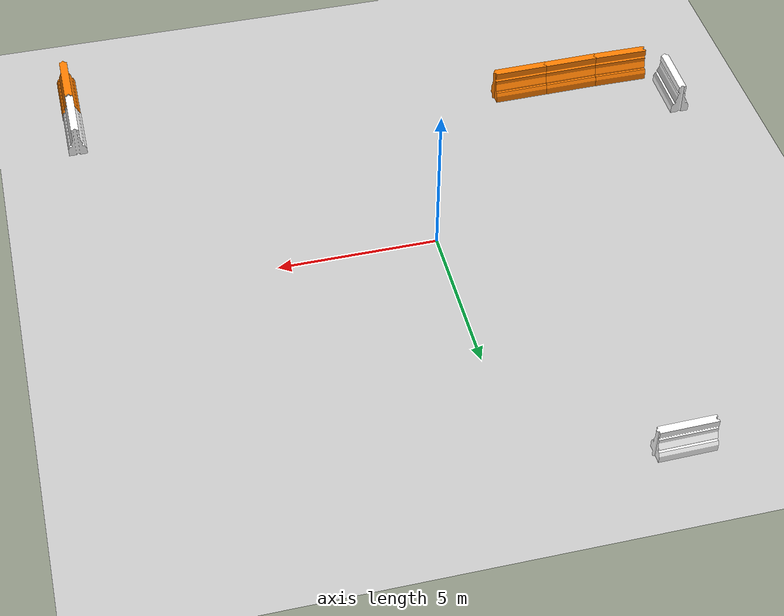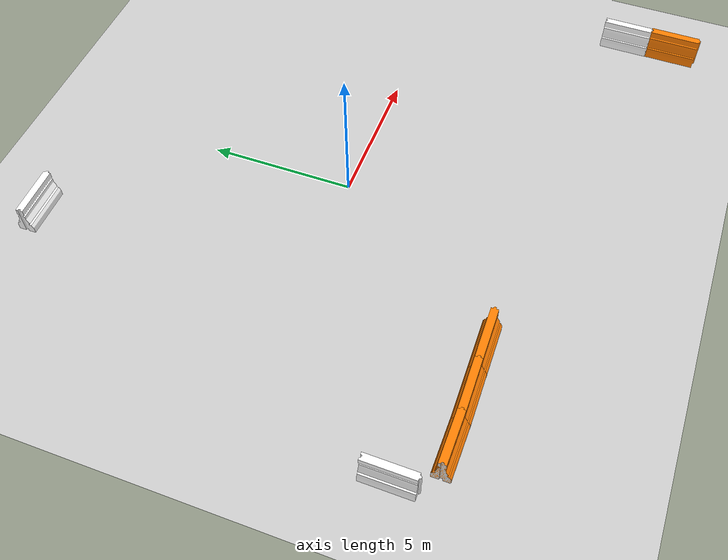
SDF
<sdf version="1.6">
 <world name="default">
  <light name="sun" type="directional">
   <pose>0 0 10 0 -0 0</pose>
   <diffuse>0.8 0.8 0.8 1</diffuse>
   <specular>0.2 0.2 0.2 1</specular>
   <attenuation>
    <range>1000</range>
    <constant>0.9</constant>
    <linear>0.01</linear>
    <quadratic>0.001</quadratic>
   </attenuation>
   <direction>-0.5 0.1 -0.9</direction>
  </light>
  <model name="ground_plane">
   <static>1</static>
   <link name="link">
    <collision name="collision">
     <geometry><plane><normal>0 0 1</normal><size>100 100</size></plane></geometry>
     <surface><friction><ode><mu>100</mu><mu2>50</mu2></ode></friction></surface>
    </collision>
    <visual name="visual">
     <cast_shadows>0</cast_shadows>
     <geometry><plane><normal>0 0 1</normal><size>100 100</size></plane></geometry>
     <material>
      <script><uri>file://media/materials/scripts/gazebo.material</uri><name>Gazebo/Grey</name></script>
     </material>
    </visual>
    <velocity_decay><linear>0</linear><angular>0</angular></velocity_decay>
   </link>
  </model>
  <model name="camera_model_1">
   <pose>-5 -5 3.5 0 1.57079 1.57079</pose>
   <static>true</static>
   <link name="camera_link">
    <sensor type="camera" name="camera">
     <update_rate>1</update_rate>
     <visualize>true</visualize>
     <camera name="head">
      <horizontal_fov>1.7962634</horizontal_fov>
      <image><width>640</width><height>480</height><format>R8G8B8</format></image>
      <clip><near>0.02</near><far>500</far></clip>
      <noise><type>gaussian</type><mean>0.0</mean><stddev>0.007</stddev></noise>
     </camera>
     <plugin name="camera_controller" filename="libgazebo_ros_camera.so">
      <ros>
       <namespace>overhead_cam_1</namespace>
       <argument>image_raw:=image_raw</argument>
       <argument>camera_info:=camera_info</argument>
      </ros>
     </plugin>
    </sensor>
   </link>
  </model>
  <model name="camera_model_2">
   <pose>0.5 -5 3.5 0 1.57079 1.57079</pose>
   <static>true</static>
   <link name="camera_link">
    <sensor type="camera" name="camera">
     <update_rate>1</update_rate>
     <visualize>true</visualize>
     <camera name="head">
      <horizontal_fov>1.7962634</horizontal_fov>
      <image><width>640</width><height>480</height><format>R8G8B8</format></image>
      <clip><near>0.02</near><far>500</far></clip>
      <noise><type>gaussian</type><mean>0.0</mean><stddev>0.007</stddev></noise>
     </camera>
     <plugin name="camera_controller" filename="libgazebo_ros_camera.so">
      <ros>
       <namespace>overhead_cam_2</namespace>
       <argument>image_raw:=image_raw</argument>
       <argument>camera_info:=camera_info</argument>
      </ros>
     </plugin>
    </sensor>
   </link>
  </model>
  <model name="camera_model_3">
   <pose>-5 -0.8 3.5 0 1.57079 1.57079</pose>
   <static>true</static>
   <link name="camera_link">
    <sensor type="camera" name="camera">
     <update_rate>1</update_rate>
     <visualize>true</visualize>
     <camera name="head">
      <horizontal_fov>1.7962634</horizontal_fov>
      <image><width>640</width><height>480</height><format>R8G8B8</format></image>
      <clip><near>0.02</near><far>500</far></clip>
      <noise><type>gaussian</type><mean>0.0</mean><stddev>0.007</stddev></noise>
     </camera>
     <plugin name="camera_controller" filename="libgazebo_ros_camera.so">
      <ros>
       <namespace>overhead_cam_3</namespace>
       <argument>image_raw:=image_raw</argument>
       <argument>camera_info:=camera_info</argument>
      </ros>
     </plugin>
    </sensor>
   </link>
  </model>
  <model name="camera_model_4">
   <pose>0.5 -0.8 3.5 0 1.57079 1.57079</pose>
   <static>true</static>
   <link name="camera_link">
    <sensor type="camera" name="camera">
     <update_rate>1</update_rate>
     <visualize>true</visualize>
     <camera name="head">
      <horizontal_fov>1.7962634</horizontal_fov>
      <image><width>640</width><height>480</height><format>R8G8B8</format></image>
      <clip><near>0.02</near><far>500</far></clip>
      <noise><type>gaussian</type><mean>0.0</mean><stddev>0.007</stddev></noise>
     </camera>
     <plugin name="camera_controller" filename="libgazebo_ros_camera.so">
      <ros>
       <namespace>overhead_cam_4</namespace>
       <argument>image_raw:=image_raw</argument>
       <argument>camera_info:=camera_info</argument>
      </ros>
     </plugin>
    </sensor>
   </link>
  </model>
  <physics type="ode">
   <max_step_size>0.001</max_step_size>
   <real_time_factor>1</real_time_factor>
   <real_time_update_rate>1000</real_time_update_rate>
   <gravity>0 0 -9.8</gravity>
  </physics>
  <scene><ambient>0.4 0.4 0.4 1</ambient><background>0.7 0.7 0.7 1</background><shadows>1</shadows></scene>
  <spherical_coordinates>
   <surface_model>EARTH_WGS84</surface_model>
   <latitude_deg>0</latitude_deg>
   <longitude_deg>0</longitude_deg>
   <elevation>0</elevation>
   <heading_deg>0</heading_deg>
  </spherical_coordinates>
  <model name="drc_practice_organge_jersey_barrier">
   <static>1</static>
   <link name="link">
    <visual name="visual">
     <geometry>
      <mesh><uri>model://drc_practice_orange_jersey_barrier/meshes/jersey_barrier.dae</uri></mesh>
     </geometry>
    </visual>
    <collision name="collision">
     <geometry>
      <mesh><uri>model://drc_practice_orange_jersey_barrier/meshes/jersey_barrier.dae</uri></mesh>
     </geometry>
    </collision>
    <velocity_decay><linear>0</linear><angular>0</angular></velocity_decay>
   </link>
   <pose>-4.54889 -6.23392 0 0 -0 1.59364</pose>
  </model>
  <model name="drc_practice_white_jersey_barrier">
   <static>1</static>
   <link name="link">
    <visual name="visual">
     <geometry>
      <mesh><uri>model://drc_practice_white_jersey_barrier/meshes/jersey_barrier.dae</uri></mesh>
     </geometry>
    </visual>
    <collision name="collision">
     <geometry>
      <mesh><uri>model://drc_practice_white_jersey_barrier/meshes/jersey_barrier.dae</uri></mesh>
     </geometry>
    </collision>
    <velocity_decay><linear>0</linear><angular>0</angular></velocity_decay>
   </link>
   <pose>-9.48699 -4.9367 0 0 -0 0</pose>
  </model>
  <model name="drc_practice_organge_jersey_barrier_0">
   <static>1</static>
   <link name="link">
    <visual name="visual">
     <geometry>
      <mesh><uri>model://drc_practice_orange_jersey_barrier/meshes/jersey_barrier.dae</uri></mesh>
     </geometry>
    </visual>
    <collision name="collision">
     <geometry>
      <mesh><uri>model://drc_practice_orange_jersey_barrier/meshes/jersey_barrier.dae</uri></mesh>
     </geometry>
    </collision>
    <velocity_decay><linear>0</linear><angular>0</angular></velocity_decay>
   </link>
   <pose>-6.30934 -6.26351 0 0 -0 1.59467</pose>
  </model>
  <model name="drc_practice_organge_jersey_barrier_1">
   <static>1</static>
   <link name="link">
    <visual name="visual">
     <geometry>
      <mesh><uri>model://drc_practice_orange_jersey_barrier/meshes/jersey_barrier.dae</uri></mesh>
     </geometry>
    </visual>
    <collision name="collision">
     <geometry>
      <mesh><uri>model://drc_practice_orange_jersey_barrier/meshes/jersey_barrier.dae</uri></mesh>
     </geometry>
    </collision>
    <velocity_decay><linear>0</linear><angular>0</angular></velocity_decay>
   </link>
   <pose>-8.06556 -6.2736 0 0 -0 1.57109</pose>
  </model>
  <model name="drc_practice_white_jersey_barrier_0">
   <static>1</static>
   <link name="link">
    <visual name="visual">
     <geometry>
      <mesh><uri>model://drc_practice_white_jersey_barrier/meshes/jersey_barrier.dae</uri></mesh>
     </geometry>
    </visual>
    <collision name="collision">
     <geometry>
      <mesh><uri>model://drc_practice_white_jersey_barrier/meshes/jersey_barrier.dae</uri></mesh>
     </geometry>
    </collision>
    <velocity_decay><linear>0</linear><angular>0</angular></velocity_decay>
   </link>
   <pose>10.3176 -7.4365 0 0 -0 0</pose>
  </model>
  <model name="drc_practice_white_jersey_barrier_1">
   <static>1</static>
   <link name="link">
    <visual name="visual">
     <geometry>
      <mesh><uri>model://drc_practice_white_jersey_barrier/meshes/jersey_barrier.dae</uri></mesh>
     </geometry>
    </visual>
    <collision name="collision">
     <geometry>
      <mesh><uri>model://drc_practice_white_jersey_barrier/meshes/jersey_barrier.dae</uri></mesh>
     </geometry>
    </collision>
    <velocity_decay><linear>0</linear><angular>0</angular></velocity_decay>
   </link>
   <pose>-4.54271 9.38577 0 0 -0 1.59123</pose>
  </model>
  <model name="drc_practice_organge_jersey_barrier_2">
   <static>1</static>
   <link name="link">
    <visual name="visual">
     <geometry>
      <mesh><uri>model://drc_practice_orange_jersey_barrier/meshes/jersey_barrier.dae</uri></mesh>
     </geometry>
    </visual>
    <collision name="collision">
     <geometry>
      <mesh><uri>model://drc_practice_orange_jersey_barrier/meshes/jersey_barrier.dae</uri></mesh>
     </geometry>
    </collision>
    <velocity_decay><linear>0</linear><angular>0</angular></velocity_decay>
   </link>
   <pose>10.3218 -9.21435 0 0 -0 0</pose>
  </model>
 </world>
</sdf>
